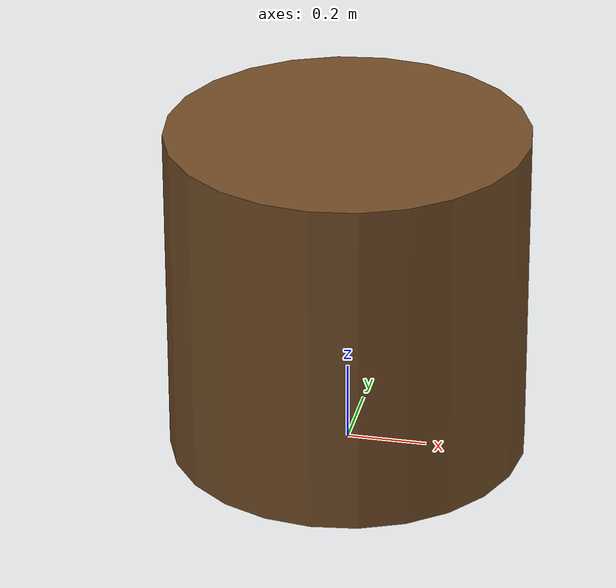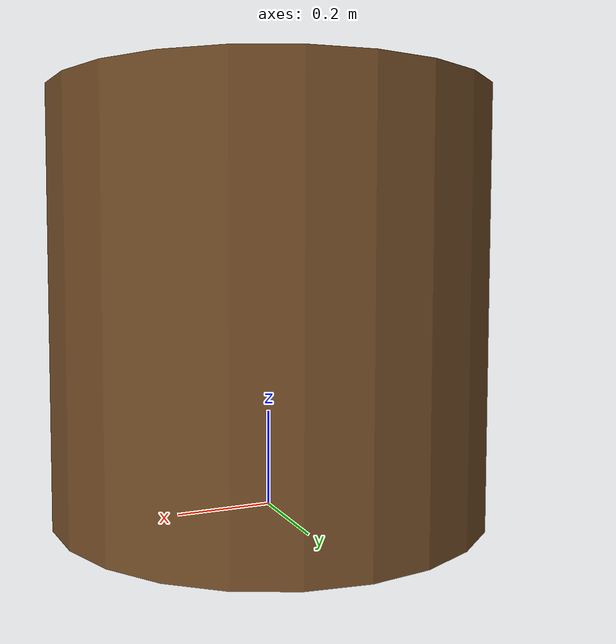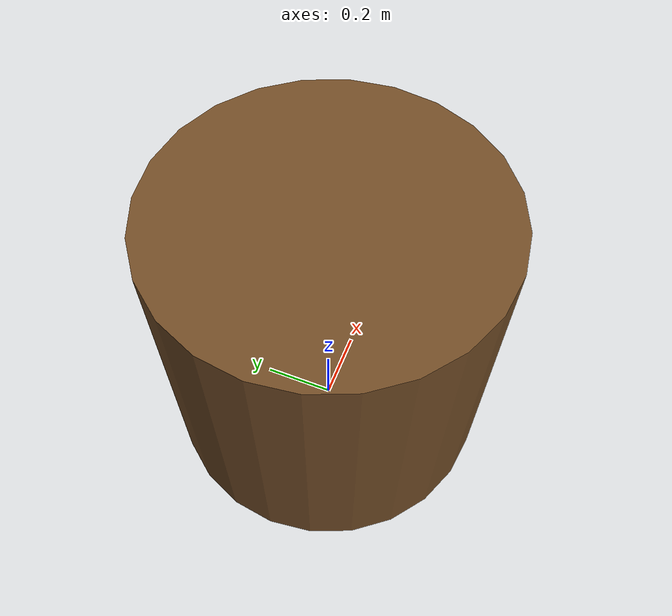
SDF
<?xml version="1.0"?>
<sdf version="1.6">
  <model name="chair_scenario">
    <static>true</static>
    <link name="body">
      <collision name="seal">
        <pose>0 0 0.425 0 0 0</pose>
        <geometry><cylinder><radius>0.45</radius><length>0.85</length></cylinder></geometry>
      </collision>
      <visual name="seal">
        <pose>0 0 0.425 0 0 0</pose>
        <geometry><cylinder><radius>0.45</radius><length>0.85</length></cylinder></geometry>
        <material><ambient>0.45 0.30 0.15 1</ambient><diffuse>0.45 0.30 0.15 1</diffuse></material>
      </visual>
    </link>
  </model>
</sdf>
